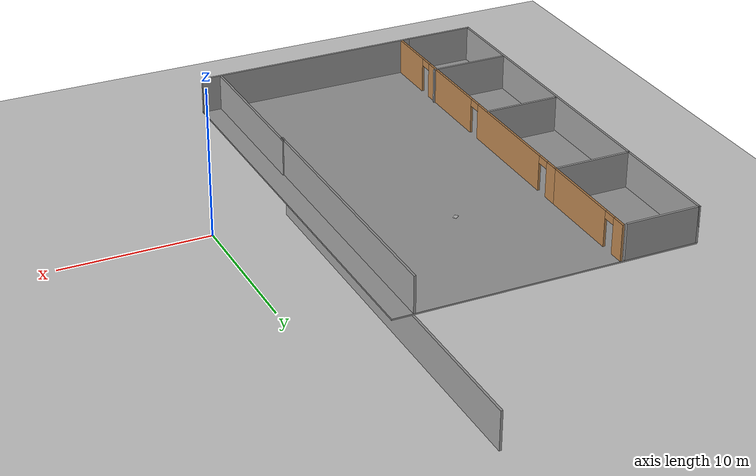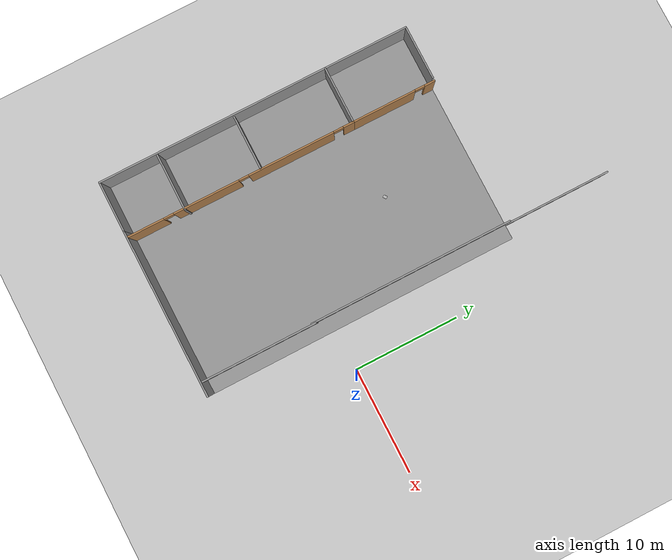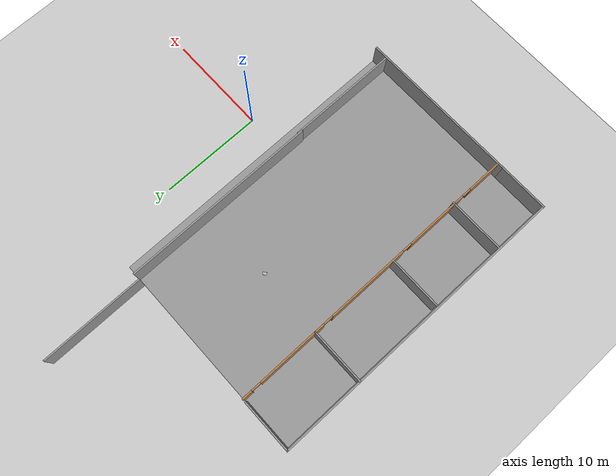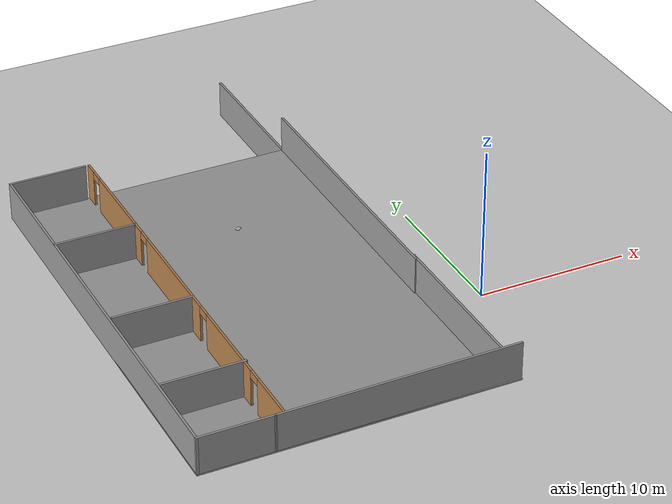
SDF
<sdf version="1.5">
 <world name="default">
  <model name="ground_plane">
   <static>1</static>
   <link name="link">
    <collision name="collision">
     <geometry><plane><normal>0 0 1</normal><size>100 100</size></plane></geometry>
     <surface>
      <contact><collide_bitmask>65535</collide_bitmask></contact>
      <friction><ode><mu>100</mu><mu2>50</mu2></ode></friction>
     </surface>
    </collision>
    <visual name="visual">
     <cast_shadows>0</cast_shadows>
     <geometry><plane><normal>0 0 1</normal><size>100 100</size></plane></geometry>
     <material>
      <script><uri>file://media/materials/scripts/gazebo.material</uri><name>Gazebo/Grey</name></script>
     </material>
    </visual>
   </link>
  </model>
  <model name="second_add">
   <pose>-13.8882 7.9927 0 0 -0 0</pose>
   <link name="Floor_1">
    <collision name="Floor_1_Collision">
     <geometry><box><size>19.9273 28.7505 0.1</size></box></geometry>
     <pose>0 0 0.05 0 -0 0</pose>
    </collision>
    <visual name="Floor_1_Visual">
     <pose>0 0 0.05 0 -0 0</pose>
     <geometry><box><size>19.9273 28.7505 0.1</size></box></geometry>
     <material>
      <script><uri>file://media/materials/scripts/gazebo.material</uri><name>Gazebo/Grey</name></script>
      <ambient>1 1 1 1</ambient>
     </material>
     <meta><layer>1</layer></meta>
    </visual>
    <pose>1e-06 -5.29758 2.5 0 -0 0</pose>
   </link>
   <link name="Wall_17">
    <collision name="Wall_17_Collision">
     <geometry><box><size>15.3272 0.15 2.5</size></box></geometry>
     <pose>0 0 1.25 0 -0 0</pose>
    </collision>
    <visual name="Wall_17_Visual">
     <pose>0 0 1.25 0 -0 0</pose>
     <geometry><box><size>15.3272 0.15 2.5</size></box></geometry>
     <material>
      <script><uri>file://media/materials/scripts/gazebo.material</uri><name>Gazebo/Grey</name></script>
      <ambient>1 1 1 1</ambient>
     </material>
     <meta><layer>1</layer></meta>
    </visual>
    <pose>2.29977 -19.55 2.5 0 -0 0.006236</pose>
   </link>
   <link name="Wall_18">
    <collision name="Wall_18_Collision">
     <geometry><box><size>10.5 0.15 2.5</size></box></geometry>
     <pose>0 0 1.25 0 -0 0</pose>
    </collision>
    <visual name="Wall_18_Visual">
     <pose>0 0 1.25 0 -0 0</pose>
     <geometry><box><size>10.5 0.15 2.5</size></box></geometry>
     <material>
      <script><uri>file://media/materials/scripts/gazebo.material</uri><name>Gazebo/Grey</name></script>
      <ambient>1 1 1 1</ambient>
     </material>
     <meta><layer>1</layer></meta>
    </visual>
    <pose>8.6382 -14.1777 2.5 0 -0 -1.5708</pose>
   </link>
   <link name="Wall_2">
    <collision name="Wall_2_Collision">
     <geometry><box><size>28.75 0.15 2.5</size></box></geometry>
     <pose>0 0 1.25 0 -0 0</pose>
    </collision>
    <visual name="Wall_2_Visual">
     <pose>0 0 1.25 0 -0 0</pose>
     <geometry><box><size>27.75 0.15 2.5</size></box></geometry>
     <material>
      <script><uri>file://media/materials/scripts/gazebo.material</uri><name>Gazebo/Grey</name></script>
      <ambient>1 1 1 1</ambient>
     </material>
     <meta><layer>0</layer></meta>
    </visual>
    <pose>8.6382 5.2973 0 0 -0 1.5708</pose>
   </link>
   <link name="Wall_20">
    <collision name="Wall_20_Collision">
     <geometry><box><size>4.75 0.15 2.5</size></box></geometry>
     <pose>0 0 1.25 0 -0 0</pose>
    </collision>
    <visual name="Wall_20_Visual">
     <pose>0 0 1.25 0 -0 0</pose>
     <geometry><box><size>4.75 0.15 2.5</size></box></geometry>
     <material>
      <script><uri>file://media/materials/scripts/gazebo.material</uri><name>Gazebo/Grey</name></script>
      <ambient>1 1 1 1</ambient>
     </material>
     <meta><layer>1</layer></meta>
    </visual>
    <pose>-7.58866 -19.5973 2.5 0 -0 3.14159</pose>
   </link>
   <link name="Wall_21">
    <collision name="Wall_21_Collision">
     <geometry><box><size>28.75 0.15 2.5</size></box></geometry>
     <pose>0 0 1.25 0 -0 0</pose>
    </collision>
    <visual name="Wall_21_Visual">
     <pose>0 0 1.25 0 -0 0</pose>
     <geometry><box><size>28.75 0.15 2.5</size></box></geometry>
     <material>
      <script><uri>file://media/materials/scripts/gazebo.material</uri><name>Gazebo/Grey</name></script>
      <ambient>1 1 1 1</ambient>
     </material>
     <meta><layer>1</layer></meta>
    </visual>
    <pose>-9.88866 -5.29734 2.5 0 -0 1.5708</pose>
   </link>
   <link name="Wall_22">
    <collision name="Wall_22_Collision">
     <geometry><box><size>5 0.15 2.5</size></box></geometry>
     <pose>0 0 1.25 0 -0 0</pose>
    </collision>
    <visual name="Wall_22_Visual">
     <pose>0 0 1.25 0 -0 0</pose>
     <geometry><box><size>5 0.15 2.5</size></box></geometry>
     <material>
      <script><uri>file://media/materials/scripts/gazebo.material</uri><name>Gazebo/Grey</name></script>
      <ambient>1 1 1 1</ambient>
     </material>
     <meta><layer>1</layer></meta>
    </visual>
    <pose>-7.46366 9.00266 2.5 0 -0 0</pose>
   </link>
   <link name="Wall_26">
    <collision name="Wall_26_Collision">
     <geometry><box><size>18.5 0.15 2.5</size></box></geometry>
     <pose>0 0 1.25 0 -0 0</pose>
    </collision>
    <visual name="Wall_26_Visual">
     <pose>0 0 1.25 0 -0 0</pose>
     <geometry><box><size>18.5 0.15 2.5</size></box></geometry>
     <material>
      <script><uri>file://media/materials/scripts/gazebo.material</uri><name>Gazebo/Grey</name></script>
      <ambient>1 1 1 1</ambient>
     </material>
     <meta><layer>1</layer></meta>
    </visual>
    <pose>8.56134 -0.172342 2.5 0 -0 -1.5708</pose>
   </link>
   <link name="Wall_31">
    <collision name="Wall_31_Collision">
     <geometry><box><size>5.25 0.15 2.5</size></box></geometry>
     <pose>0 0 1.25 0 -0 0</pose>
    </collision>
    <visual name="Wall_31_Visual">
     <pose>0 0 1.25 0 -0 0</pose>
     <geometry><box><size>5.25 0.15 2.5</size></box></geometry>
     <material>
      <script><uri>file://media/materials/scripts/gazebo.material</uri><name>Gazebo/Grey</name></script>
      <ambient>1 1 1 1</ambient>
     </material>
     <meta><layer>1</layer></meta>
    </visual>
    <pose>-7.28649 1.3805 2.5 0 -0 0</pose>
   </link>
   <link name="Wall_32">
    <pose>-4.73649 -9.0445 2.5 0 -0 -1.5708</pose>
    <visual name="Wall_32_Visual_0">
     <pose>-9.98504 0 1.25 0 -0 0</pose>
     <geometry><box><size>1.02992 0.15 2.5</size></box></geometry>
     <material><script><name>Gazebo/Wood</name><uri>__default__</uri></script></material>
     <meta><layer>1</layer></meta>
    </visual>
    <collision name="Wall_32_Collision_0">
     <geometry><box><size>1.02992 0.15 2.5</size></box></geometry>
     <pose>-9.98504 0 1.25 0 -0 0</pose>
    </collision>
    <visual name="Wall_32_Visual_1">
     <pose>-4.61896 0 1.25 0 -0 0</pose>
     <geometry><box><size>7.90224 0.15 2.5</size></box></geometry>
     <material><script><name>Gazebo/Wood</name><uri>__default__</uri></script></material>
     <meta><layer>1</layer></meta>
    </visual>
    <collision name="Wall_32_Collision_1">
     <geometry><box><size>7.90224 0.15 2.5</size></box></geometry>
     <pose>-4.61896 0 1.25 0 -0 0</pose>
    </collision>
    <visual name="Wall_32_Visual_2">
     <pose>3.25296 0 1.25 0 -0 0</pose>
     <geometry><box><size>6.0416 0.15 2.5</size></box></geometry>
     <material><script><name>Gazebo/Wood</name><uri>__default__</uri></script></material>
     <meta><layer>1</layer></meta>
    </visual>
    <collision name="Wall_32_Collision_2">
     <geometry><box><size>6.0416 0.15 2.5</size></box></geometry>
     <pose>3.25296 0 1.25 0 -0 0</pose>
    </collision>
    <visual name="Wall_32_Visual_3">
     <pose>8.83688 0 1.25 0 -0 0</pose>
     <geometry><box><size>3.32624 0.15 2.5</size></box></geometry>
     <material><script><name>Gazebo/Wood</name><uri>__default__</uri></script></material>
     <meta><layer>1</layer></meta>
    </visual>
    <collision name="Wall_32_Collision_3">
     <geometry><box><size>3.32624 0.15 2.5</size></box></geometry>
     <pose>8.83688 0 1.25 0 -0 0</pose>
    </collision>
    <visual name="Wall_32_Visual_4">
     <pose>-9.02008 0 2.25 0 -0 0</pose>
     <geometry><box><size>0.9 0.15 0.5</size></box></geometry>
     <material><script><name>Gazebo/Wood</name><uri>__default__</uri></script></material>
     <meta><layer>1</layer></meta>
    </visual>
    <collision name="Wall_32_Collision_4">
     <geometry><box><size>0.9 0.15 0.5</size></box></geometry>
     <pose>-9.02008 0 2.25 0 -0 0</pose>
    </collision>
    <visual name="Wall_32_Visual_5">
     <pose>-0.217841 0 2.25 0 -0 0</pose>
     <geometry><box><size>0.9 0.15 0.5</size></box></geometry>
     <material><script><name>Gazebo/Wood</name><uri>__default__</uri></script></material>
     <meta><layer>1</layer></meta>
    </visual>
    <collision name="Wall_32_Collision_5">
     <geometry><box><size>0.9 0.15 0.5</size></box></geometry>
     <pose>-0.217841 0 2.25 0 -0 0</pose>
    </collision>
    <visual name="Wall_32_Visual_6">
     <pose>6.72377 0 2.25 0 -0 0</pose>
     <geometry><box><size>0.9 0.15 0.5</size></box></geometry>
     <material><script><name>Gazebo/Wood</name><uri>__default__</uri></script></material>
     <meta><layer>1</layer></meta>
    </visual>
    <collision name="Wall_32_Collision_6">
     <geometry><box><size>0.9 0.15 0.5</size></box></geometry>
     <pose>6.72377 0 2.25 0 -0 0</pose>
    </collision>
   </link>
   <link name="Wall_34">
    <pose>-4.73649 5.1805 2.5 0 -0 1.5708</pose>
    <visual name="Wall_34_Visual_0">
     <pose>-0.939314 0 1.25 0 -0 0</pose>
     <geometry><box><size>5.87137 0.15 2.5</size></box></geometry>
     <material><script><name>Gazebo/Wood</name><uri>__default__</uri></script></material>
     <meta><layer>1</layer></meta>
    </visual>
    <collision name="Wall_34_Collision_0">
     <geometry><box><size>5.87137 0.15 2.5</size></box></geometry>
     <pose>-0.939314 0 1.25 0 -0 0</pose>
    </collision>
    <visual name="Wall_34_Visual_1">
     <pose>3.38569 0 1.25 0 -0 0</pose>
     <geometry><box><size>0.978629 0.15 2.5</size></box></geometry>
     <material><script><name>Gazebo/Wood</name><uri>__default__</uri></script></material>
     <meta><layer>1</layer></meta>
    </visual>
    <collision name="Wall_34_Collision_1">
     <geometry><box><size>0.978629 0.15 2.5</size></box></geometry>
     <pose>3.38569 0 1.25 0 -0 0</pose>
    </collision>
    <visual name="Wall_34_Visual_2">
     <pose>2.44637 0 2.25 0 -0 0</pose>
     <geometry><box><size>0.9 0.15 0.5</size></box></geometry>
     <material><script><name>Gazebo/Wood</name><uri>__default__</uri></script></material>
     <meta><layer>1</layer></meta>
    </visual>
    <collision name="Wall_34_Collision_2">
     <geometry><box><size>0.9 0.15 0.5</size></box></geometry>
     <pose>2.44637 0 2.25 0 -0 0</pose>
    </collision>
   </link>
   <link name="Wall_36">
    <collision name="Wall_36_Collision">
     <geometry><box><size>5 0.15 2.5</size></box></geometry>
     <pose>0 0 1.25 0 -0 0</pose>
    </collision>
    <visual name="Wall_36_Visual">
     <pose>0 0 1.25 0 -0 0</pose>
     <geometry><box><size>5 0.15 2.5</size></box></geometry>
     <material>
      <script><uri>file://media/materials/scripts/gazebo.material</uri><name>Gazebo/Grey</name></script>
      <ambient>1 1 1 1</ambient>
     </material>
     <meta><layer>1</layer></meta>
    </visual>
    <pose>-7.24547 -7.23192 2.5 0 -0 3.14159</pose>
   </link>
   <link name="Wall_38">
    <collision name="Wall_38_Collision">
     <geometry><box><size>5.25 0.15 2.5</size></box></geometry>
     <pose>0 0 1.25 0 -0 0</pose>
    </collision>
    <visual name="Wall_38_Visual">
     <pose>0 0 1.25 0 -0 0</pose>
     <geometry><box><size>5.25 0.15 2.5</size></box></geometry>
     <material>
      <script><uri>file://media/materials/scripts/gazebo.material</uri><name>Gazebo/Grey</name></script>
      <ambient>1 1 1 1</ambient>
     </material>
     <meta><layer>1</layer></meta>
    </visual>
    <pose>-7.18118 -14.3301 2.5 0 -0 3.14159</pose>
   </link>
   <static>1</static>
  </model>
  <model name="newspaper_2">
   <link name="link_0">
    <visual name="visual">
     <meta><layer>3</layer></meta>
     <geometry><box><size>0.35 0.25 0.02</size></box></geometry>
     <material>
      <script>
       <uri>model://newspaper_2/materials/scripts</uri>
       <uri>model://newspaper_2/materials/textures</uri>
       <name>newspaper_2</name>
      </script>
     </material>
    </visual>
    <collision name="collision"><geometry><box><size>0.35 0.25 0.02</size></box></geometry></collision>
   </link>
   <static>1</static>
   <pose>-12.0862 9.01925 3.03342 0 -0 0.680542</pose>
  </model>
 </world>
</sdf>
